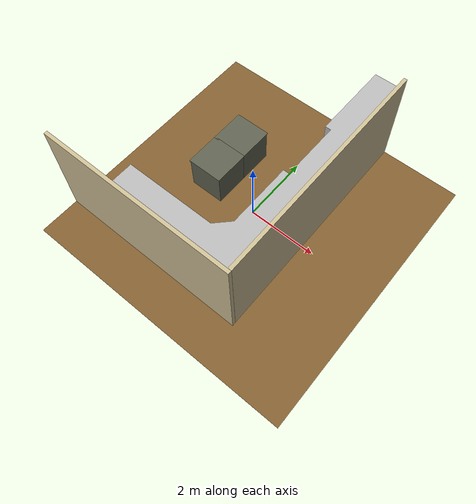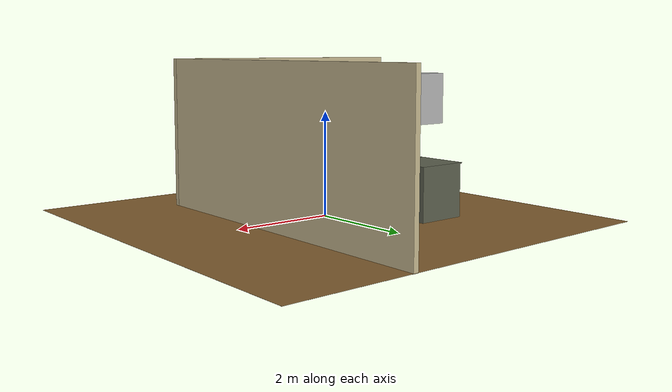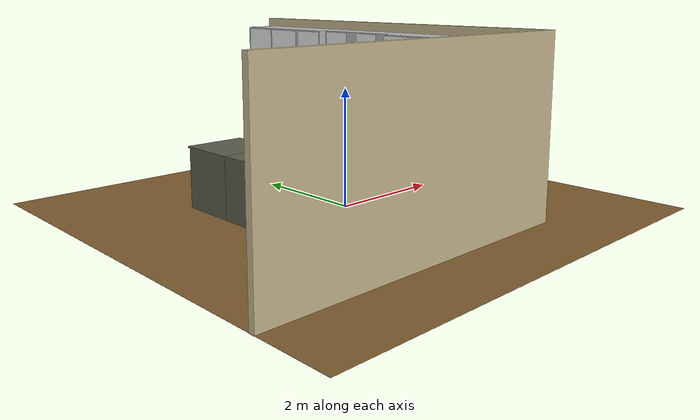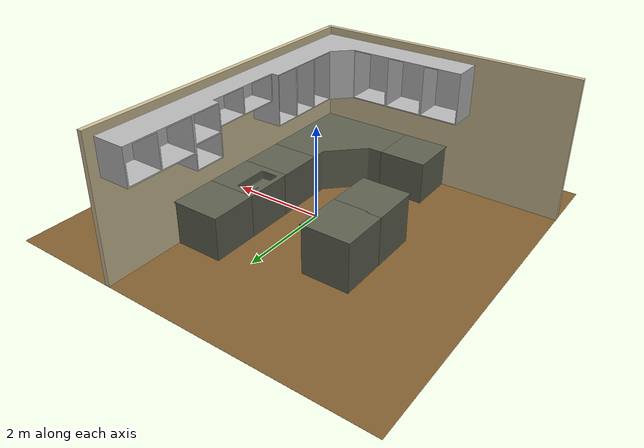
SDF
<?xml version="1.0"?>
<!-- created with Phobos 1.0.1 "Capricious Choutengan" -->
<sdf version="1.5">
  <model name="Kitchen_static">
    <link name="countertop_link">
      <pose>1.04436 1.80656 0.90913 0 0 0</pose>
      <inertial>
        <mass>0.001</mass>
        <inertia>
          <ixx>0.001</ixx>
          <ixy>0</ixy>
          <ixz>0</ixz>
          <iyy>0.001</iyy>
          <iyz>0</iyz>
          <izz>0.001</izz>
        </inertia>
        <pose>0 0 0 0 0 0</pose>
      </inertial>
      <collision name="Countertop_Top.col">
        <pose>0 0 0.00015 0 0 0</pose>
        <geometry>
          <mesh>
            <uri>model://Kitchen_static/meshes/Cube.143.dae</uri>
            <scale>1.0 1.0 1.0</scale>
          </mesh>
        </geometry>
      </collision>
      <visual name="Countertop_Top">
        <pose>0.0 0.0 0.0 0.0 -0.0 0.0</pose>
        <material>
          <ambient>0.36791 0.38159 0.38159 1.0</ambient>
          <diffuse>0.36791 0.38159 0.31374 1.0</diffuse>
          <specular>0.5 0.5 0.5 1.0</specular>
        </material>
        <geometry>
          <mesh>
            <uri>model://Kitchen_static/meshes/Cube.142.dae</uri>
            <scale>1.0 1.0 1.0</scale>
          </mesh>
        </geometry>
      </visual>
    </link>
    <link name="countertop_edge_link">
      <pose>-0.95636 -2.19209 0.90906 0 0 0</pose>
      <inertial>
        <mass>0.001</mass>
        <inertia>
          <ixx>0.001</ixx>
          <ixy>0</ixy>
          <ixz>0</ixz>
          <iyy>0.001</iyy>
          <iyz>0</iyz>
          <izz>0.001</izz>
        </inertia>
        <pose>0 0 0 0 0 0</pose>
      </inertial>
      <collision name="Countertop_Top.001.000">
        <pose>0 0 6e-05 0 0 0</pose>
        <geometry>
          <mesh>
            <uri>model://Kitchen_static/meshes/Cube.156.dae</uri>
            <scale>1.0 1.0 1.0</scale>
          </mesh>
        </geometry>
      </collision>
      <visual name="Countertop_Top.001">
        <pose>0.0 0.0 -5.960464477539063e-08 0.0 -0.0 0.0</pose>
        <material>
          <ambient>0.36791 0.38159 0.38159 1.0</ambient>
          <diffuse>0.36791 0.38159 0.31374 1.0</diffuse>
          <specular>0.5 0.5 0.5 1.0</specular>
        </material>
        <geometry>
          <mesh>
            <uri>model://Kitchen_static/meshes/Cube.155.dae</uri>
            <scale>1.0 1.0 1.0</scale>
          </mesh>
        </geometry>
      </visual>
    </link>
    <link name="wall2">
      <pose>-1.16959 -2.76415 1.49534 0 0 0</pose>
      <inertial>
        <mass>0.001</mass>
        <inertia>
          <ixx>0.001</ixx>
          <ixy>0</ixy>
          <ixz>0</ixz>
          <iyy>0.001</iyy>
          <iyz>0</iyz>
          <izz>0.001</izz>
        </inertia>
        <pose>0 0 0 0 0 0</pose>
      </inertial>
      <collision name="Wall_2">
        <pose>0 0 0 0 0 0</pose>
        <geometry>
          <box>
            <size>5.65911 0.10015 3.00596</size>
          </box>
        </geometry>
      </collision>
      <visual name="Wall_2">
        <pose>1.1920928955078125e-07 0.0 -1.1920928955078125e-07 0.0 -5.960465188081798e-08 0.0</pose>
        <material>
          <ambient>0.8 0.74126 0.74126 1.0</ambient>
          <diffuse>0.8 0.74126 0.58046 1.0</diffuse>
          <specular>0.5 0.5 0.5 1.0</specular>
        </material>
        <geometry>
          <box>
            <size>5.65911 0.10015 3.00596</size>
          </box>
        </geometry>
      </visual>
    </link>
    <link name="countertop_tall_link">
      <pose>-1.41586 0.20737 0.92078 0 0 0</pose>
      <inertial>
        <mass>0.001</mass>
        <inertia>
          <ixx>0.001</ixx>
          <ixy>0</ixy>
          <ixz>0</ixz>
          <iyy>0.001</iyy>
          <iyz>0</iyz>
          <izz>0.001</izz>
        </inertia>
        <pose>0 0 0 0 0 0</pose>
      </inertial>
      <collision name="Countertop_Top_Taller.000">
        <pose>0 0 -0.00019 0 0 0</pose>
        <geometry>
          <mesh>
            <uri>model://Kitchen_static/meshes/Cube.159.dae</uri>
            <scale>1.0 1.0 1.0</scale>
          </mesh>
        </geometry>
      </collision>
      <visual name="Countertop_Top_Taller">
        <pose>2.384185791015625e-07 -2.9802322387695312e-08 -5.960464477539063e-08 0.0 -0.0 1.4901159417490817e-08</pose>
        <material>
          <ambient>0.36791 0.38159 0.38159 1.0</ambient>
          <diffuse>0.36791 0.38159 0.31374 1.0</diffuse>
          <specular>0.5 0.5 0.5 1.0</specular>
        </material>
        <geometry>
          <mesh>
            <uri>model://Kitchen_static/meshes/Cube.157.dae</uri>
            <scale>1.0 1.0 1.0</scale>
          </mesh>
        </geometry>
      </visual>
    </link>
    <link name="root_static">
      <pose>0 0 0 0 0 0</pose>
      <inertial>
        <mass>0.001</mass>
        <inertia>
          <ixx>0.001</ixx>
          <ixy>0</ixy>
          <ixz>0</ixz>
          <iyy>0.001</iyy>
          <iyz>0</iyz>
          <izz>0.001</izz>
        </inertia>
        <pose>0 0 0 0 0 0</pose>
      </inertial>
      <collision name="Floor">
        <pose>0 0 0 0 0 0</pose>
        <geometry>
          <box>
            <size>8.0 8.0 0.002</size>
          </box>
        </geometry>
      </collision>
      <visual name="Floor">
        <pose>0.0 0.0 0.0 0.0 -0.0 0.0</pose>
        <material>
          <ambient>0.51303 0.37541 0.37541 1.0</ambient>
          <diffuse>0.51303 0.37541 0.19019 1.0</diffuse>
          <specular>0.5 0.5 0.5 1.0</specular>
        </material>
        <geometry>
          <box>
            <size>8.0 8.0 0.002</size>
          </box>
        </geometry>
      </visual>
    </link>
    <link name="countertop_sink_link">
      <pose>1.04357 0.81118 0.90952 0 0 3.14154</pose>
      <inertial>
        <mass>0.001</mass>
        <inertia>
          <ixx>0.001</ixx>
          <ixy>0</ixy>
          <ixz>0</ixz>
          <iyy>0.001</iyy>
          <iyz>0</iyz>
          <izz>0.001</izz>
        </inertia>
        <pose>0 0 0 0 0 0</pose>
      </inertial>
      <collision name="Countertop_Sink.000">
        <pose>0 0 -0.00261 0 0 0</pose>
        <geometry>
          <mesh>
            <uri>model://Kitchen_static/meshes/Cube.147.dae</uri>
            <scale>1.0 1.0 1.0</scale>
          </mesh>
        </geometry>
      </collision>
      <visual name="Countertop_Sink">
        <pose>0.0 0.0 0.0 0.0 -0.0 2.3857865016907454e-08</pose>
        <material>
          <ambient>0.36791 0.38159 0.38159 1.0</ambient>
          <diffuse>0.36791 0.38159 0.31374 1.0</diffuse>
          <specular>0.5 0.5 0.5 1.0</specular>
        </material>
        <geometry>
          <mesh>
            <uri>model://Kitchen_static/meshes/Cube.146.dae</uri>
            <scale>1.0 1.0 1.0</scale>
          </mesh>
        </geometry>
      </visual>
    </link>
    <link name="countertop_corner_link">
      <pose>0.63422 -1.78146 0.44381 0 0 -3.14159</pose>
      <inertial>
        <mass>0.001</mass>
        <inertia>
          <ixx>0.001</ixx>
          <ixy>0</ixy>
          <ixz>0</ixz>
          <iyy>0.001</iyy>
          <iyz>0</iyz>
          <izz>0.001</izz>
        </inertia>
        <pose>0 0 0 0 0 0</pose>
      </inertial>
      <collision name="Countertop_Corner_Base.000">
        <pose>0.0007 -0.00555 0.0003 0 0 0</pose>
        <geometry>
          <mesh>
            <uri>model://Kitchen_static/meshes/Cube.158.dae</uri>
            <scale>1.0 1.0 1.0</scale>
          </mesh>
        </geometry>
      </collision>
      <visual name="Countertop_Corner_Base">
        <pose>0.0 0.0 2.9802322387695312e-08 0.0 -0.0 -6.357302595461078e-08</pose>
        <material>
          <ambient>0.36791 0.38159 0.38159 1.0</ambient>
          <diffuse>0.36791 0.38159 0.31374 1.0</diffuse>
          <specular>0.5 0.5 0.5 1.0</specular>
        </material>
        <geometry>
          <mesh>
            <uri>model://Kitchen_static/meshes/Cube.154.dae</uri>
            <scale>1.0 1.0 1.0</scale>
          </mesh>
        </geometry>
      </visual>
    </link>
    <link name="cabinets_root">
      <pose>1.23355 0.35459 2.3706 0 0 0</pose>
      <inertial>
        <mass>0.001</mass>
        <inertia>
          <ixx>0.001</ixx>
          <ixy>0</ixy>
          <ixz>0</ixz>
          <iyy>0.001</iyy>
          <iyz>0</iyz>
          <izz>0.001</izz>
        </inertia>
        <pose>0 0 0 0 0 0</pose>
      </inertial>
      <collision name="Cabinets.000">
        <pose>-0.45157 -0.20882 0 0 0 0</pose>
        <geometry>
          <mesh>
            <uri>model://Kitchen_static/meshes/Cabinets.009.dae</uri>
            <scale>1.0 1.0 1.0</scale>
          </mesh>
        </geometry>
      </collision>
      <visual name="Cabinets">
        <pose>-0.4515690207481384 -0.20881761610507965 3.337860107421875e-06 0.0 7.525231012550648e-06 3.695799932756927e-08</pose>
        <geometry>
          <mesh>
            <uri>model://Kitchen_static/meshes/Cabinets.dae</uri>
            <scale>1.0 1.0 1.0</scale>
          </mesh>
        </geometry>
      </visual>
    </link>
    <link name="countertop_tall2_link">
      <pose>-1.41531 1.20516 0.92078 0 0 0</pose>
      <inertial>
        <mass>0.001</mass>
        <inertia>
          <ixx>0.001</ixx>
          <ixy>0</ixy>
          <ixz>0</ixz>
          <iyy>0.001</iyy>
          <iyz>0</iyz>
          <izz>0.001</izz>
        </inertia>
        <pose>0 0 0 0 0 0</pose>
      </inertial>
      <collision name="Countertop_Top_Taller2.000">
        <pose>0 0 0.00057 0 0 0</pose>
        <geometry>
          <mesh>
            <uri>model://Kitchen_static/meshes/Cube.000.dae</uri>
            <scale>1.0 1.0 1.0</scale>
          </mesh>
        </geometry>
      </collision>
      <visual name="Countertop_Top_Taller2">
        <pose>0.0 1.1920928955078125e-07 0.0 0.0 -0.0 5.960464477539063e-08</pose>
        <material>
          <ambient>0.36791 0.38159 0.38159 1.0</ambient>
          <diffuse>0.36791 0.38159 0.31374 1.0</diffuse>
          <specular>0.5 0.5 0.5 1.0</specular>
        </material>
        <geometry>
          <mesh>
            <uri>model://Kitchen_static/meshes/Cube.008.dae</uri>
            <scale>1.0 1.0 1.0</scale>
          </mesh>
        </geometry>
      </visual>
    </link>
    <link name="wall1">
      <pose>1.60982 0.64096 1.49534 0 0 0</pose>
      <inertial>
        <mass>0.001</mass>
        <inertia>
          <ixx>0.001</ixx>
          <ixy>0</ixy>
          <ixz>0</ixz>
          <iyy>0.001</iyy>
          <iyz>0</iyz>
          <izz>0.001</izz>
        </inertia>
        <pose>0 0 0 0 0 0</pose>
      </inertial>
      <collision name="Wall_1.col">
        <pose>0 0 0 0 0 0</pose>
        <geometry>
          <box>
            <size>0.10015 6.70389 3.00596</size>
          </box>
        </geometry>
      </collision>
      <visual name="Wall_1">
        <pose>0.0 0.0 -1.1920928955078125e-07 0.0 -0.0 0.0</pose>
        <material>
          <ambient>0.8 0.74126 0.74126 1.0</ambient>
          <diffuse>0.8 0.74126 0.58046 1.0</diffuse>
          <specular>0.5 0.5 0.5 1.0</specular>
        </material>
        <geometry>
          <box>
            <size>0.10015 6.70389 3.00596</size>
          </box>
        </geometry>
      </visual>
    </link>
    <link name="countertop1_link">
      <pose>1.04436 -0.18407 0.90913 0 0 0</pose>
      <inertial>
        <mass>0.001</mass>
        <inertia>
          <ixx>0.001</ixx>
          <ixy>0</ixy>
          <ixz>0</ixz>
          <iyy>0.001</iyy>
          <iyz>0</iyz>
          <izz>0.001</izz>
        </inertia>
        <pose>0 0 0 0 0 0</pose>
      </inertial>
      <collision name="Countertop_Top1.000">
        <pose>0 -0.00258 -0.00061 0 0 0</pose>
        <geometry>
          <mesh>
            <uri>model://Kitchen_static/meshes/Cube.153.dae</uri>
            <scale>1.0 1.0 1.0</scale>
          </mesh>
        </geometry>
      </collision>
      <visual name="Countertop_Top1">
        <pose>0.0 -0.0025838464498519897 -0.0003107786178588867 0.0 -0.0 0.0</pose>
        <material>
          <ambient>0.36791 0.38159 0.38159 1.0</ambient>
          <diffuse>0.36791 0.38159 0.31374 1.0</diffuse>
          <specular>0.5 0.5 0.5 1.0</specular>
        </material>
        <geometry>
          <mesh>
            <uri>model://Kitchen_static/meshes/Cube.152.dae</uri>
            <scale>1.0 1.0 1.0</scale>
          </mesh>
        </geometry>
      </visual>
    </link>
    <joint type="fixed" name="countertop_link">
      <parent>root_static</parent>
      <child>countertop_link</child>
      <pose>0.0 0.0 0.0 0.0 0.0 0.0</pose>
    </joint>
    <joint type="fixed" name="wall2">
      <parent>root_static</parent>
      <child>wall2</child>
      <pose>0.0 0.0 0.0 0.0 0.0 0.0</pose>
    </joint>
    <joint type="fixed" name="countertop_tall_link">
      <parent>root_static</parent>
      <child>countertop_tall_link</child>
      <pose>0.0 0.0 0.0 0.0 0.0 0.0</pose>
    </joint>
    <joint type="fixed" name="countertop1_link">
      <parent>root_static</parent>
      <child>countertop1_link</child>
      <pose>0.0 0.0 0.0 0.0 0.0 0.0</pose>
    </joint>
    <joint type="fixed" name="countertop_sink_link">
      <parent>root_static</parent>
      <child>countertop_sink_link</child>
      <pose>0.0 0.0 0.0 0.0 0.0 0.0</pose>
    </joint>
    <joint type="fixed" name="countertop_corner_link">
      <parent>root_static</parent>
      <child>countertop_corner_link</child>
      <pose>0.0 0.0 0.0 0.0 0.0 0.0</pose>
    </joint>
    <joint type="fixed" name="cabinets_root">
      <parent>root_static</parent>
      <child>cabinets_root</child>
      <pose>0.0 0.0 0.0 0.0 0.0 0.0</pose>
    </joint>
    <joint type="fixed" name="countertop_tall2_link">
      <parent>root_static</parent>
      <child>countertop_tall2_link</child>
      <pose>0.0 0.0 0.0 0.0 0.0 0.0</pose>
    </joint>
    <joint type="fixed" name="countertop_edge_link">
      <parent>root_static</parent>
      <child>countertop_edge_link</child>
      <pose>0.0 0.0 0.0 0.0 0.0 0.0</pose>
    </joint>
    <joint type="fixed" name="wall1">
      <parent>root_static</parent>
      <child>wall1</child>
      <pose>0.0 0.0 0.0 0.0 0.0 0.0</pose>
    </joint>
  </model>
</sdf>
